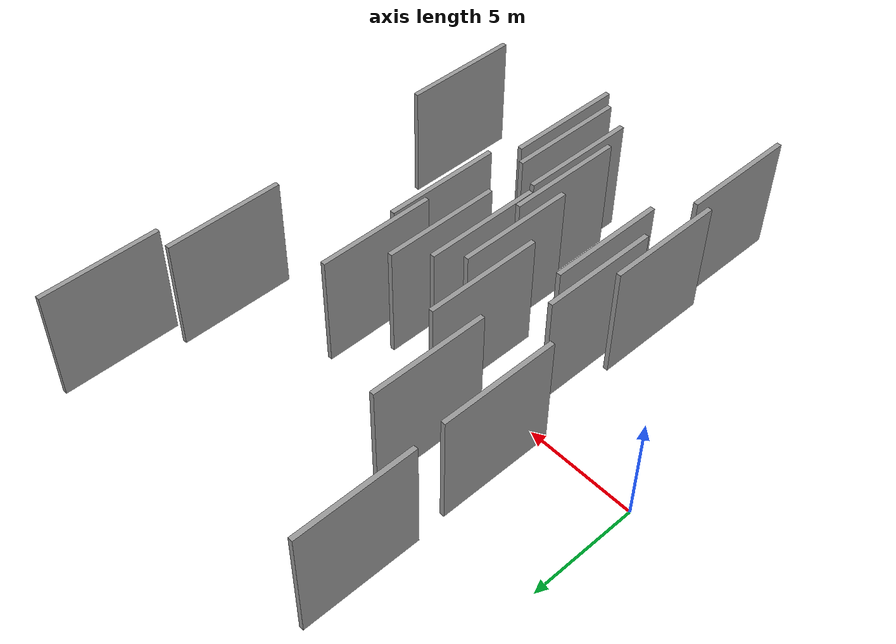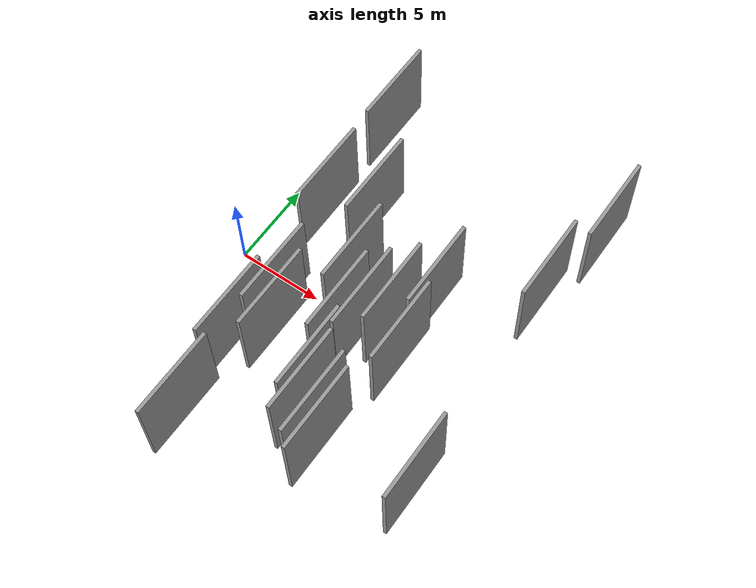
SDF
<sdf version="1.6">
 <world name="default">
  <scene>
   <sky><clouds><speed>12</speed></clouds></sky>
   <ambient>0.4 0.4 0.4 1</ambient>
   <background>0.7 0.7 0.7 1</background>
   <shadows>1</shadows>
  </scene>
  <gravity>0 0 -9.8066</gravity>
  <magnetic_field>6e-06 2.3e-05 -4.2e-05</magnetic_field>
  <physics default="0" name="default_physics" type="ode">
   <ode>
    <solver>
     <type>quick</type>
     <iters>10</iters>
     <sor>1.0</sor>
     <use_dynamic_moi_rescaling>0</use_dynamic_moi_rescaling>
    </solver>
    <constraints>
     <cfm>0</cfm>
     <erp>0.2</erp>
     <contact_max_correcting_vel>100</contact_max_correcting_vel>
     <contact_surface_layer>0.001</contact_surface_layer>
    </constraints>
   </ode>
   <max_step_size>0.004</max_step_size>
   <real_time_factor>1</real_time_factor>
   <real_time_update_rate>250</real_time_update_rate>
  </physics>
  <light name="sun" type="directional">
   <pose>0 0 10 0 0 0</pose>
   <diffuse>0.8 0.8 0.8 1</diffuse>
   <specular>0.2 0.2 0.2 1</specular>
   <attenuation>
    <range>1000</range>
    <constant>0.9</constant>
    <linear>0.01</linear>
    <quadratic>0.001</quadratic>
   </attenuation>
   <direction>-0.5 0.1 -0.9</direction>
  </light>
  <model name="grey_wall_1">
   <static>1</static>
   <pose>10.4375 -6.9571 2.5 0.000000 0.000000 1.570796</pose>
   <link name="link">
    <pose>0 0 2.50 0 0 0</pose>
    <collision name="collision"><geometry><box><size>5.00 0.2 5.00</size></box></geometry></collision>
    <visual name="visual">
     <cast_shadows>0</cast_shadows>
     <geometry><box><size>5.00 0.2 5.00</size></box></geometry>
     <material>
      <script>
       <uri>model://grey_wall/materials/scripts</uri>
       <uri>model://grey_wall/materials/textures</uri>
       <name>vrc/grey_wall</name>
      </script>
     </material>
    </visual>
   </link>
  </model>
  <model name="grey_wall_2">
   <static>1</static>
   <pose>7.1329 0.7677 2.5 0.000000 0.000000 1.570796</pose>
   <link name="link">
    <pose>0 0 2.50 0 0 0</pose>
    <collision name="collision"><geometry><box><size>5.00 0.2 5.00</size></box></geometry></collision>
    <visual name="visual">
     <cast_shadows>0</cast_shadows>
     <geometry><box><size>5.00 0.2 5.00</size></box></geometry>
     <material>
      <script>
       <uri>model://grey_wall/materials/scripts</uri>
       <uri>model://grey_wall/materials/textures</uri>
       <name>vrc/grey_wall</name>
      </script>
     </material>
    </visual>
   </link>
  </model>
  <model name="grey_wall_3">
   <static>1</static>
   <pose>10.1062 -0.0211 2.5 0.000000 0.000000 1.570796</pose>
   <link name="link">
    <pose>0 0 2.50 0 0 0</pose>
    <collision name="collision"><geometry><box><size>5.00 0.2 5.00</size></box></geometry></collision>
    <visual name="visual">
     <cast_shadows>0</cast_shadows>
     <geometry><box><size>5.00 0.2 5.00</size></box></geometry>
     <material>
      <script>
       <uri>model://grey_wall/materials/scripts</uri>
       <uri>model://grey_wall/materials/textures</uri>
       <name>vrc/grey_wall</name>
      </script>
     </material>
    </visual>
   </link>
  </model>
  <model name="grey_wall_4">
   <static>1</static>
   <pose>15.7610 5.5282 2.5 0.000000 0.000000 1.570796</pose>
   <link name="link">
    <pose>0 0 2.50 0 0 0</pose>
    <collision name="collision"><geometry><box><size>5.00 0.2 5.00</size></box></geometry></collision>
    <visual name="visual">
     <cast_shadows>0</cast_shadows>
     <geometry><box><size>5.00 0.2 5.00</size></box></geometry>
     <material>
      <script>
       <uri>model://grey_wall/materials/scripts</uri>
       <uri>model://grey_wall/materials/textures</uri>
       <name>vrc/grey_wall</name>
      </script>
     </material>
    </visual>
   </link>
  </model>
  <model name="grey_wall_5">
   <static>1</static>
   <pose>9.2711 -6.3599 2.5 0.000000 0.000000 1.570796</pose>
   <link name="link">
    <pose>0 0 2.50 0 0 0</pose>
    <collision name="collision"><geometry><box><size>5.00 0.2 5.00</size></box></geometry></collision>
    <visual name="visual">
     <cast_shadows>0</cast_shadows>
     <geometry><box><size>5.00 0.2 5.00</size></box></geometry>
     <material>
      <script>
       <uri>model://grey_wall/materials/scripts</uri>
       <uri>model://grey_wall/materials/textures</uri>
       <name>vrc/grey_wall</name>
      </script>
     </material>
    </visual>
   </link>
  </model>
  <model name="grey_wall_6">
   <static>1</static>
   <pose>3.9397 -5.1792 2.5 0.000000 0.000000 1.570796</pose>
   <link name="link">
    <pose>0 0 2.50 0 0 0</pose>
    <collision name="collision"><geometry><box><size>5.00 0.2 5.00</size></box></geometry></collision>
    <visual name="visual">
     <cast_shadows>0</cast_shadows>
     <geometry><box><size>5.00 0.2 5.00</size></box></geometry>
     <material>
      <script>
       <uri>model://grey_wall/materials/scripts</uri>
       <uri>model://grey_wall/materials/textures</uri>
       <name>vrc/grey_wall</name>
      </script>
     </material>
    </visual>
   </link>
  </model>
  <model name="grey_wall_7">
   <static>1</static>
   <pose>9.0443 -1.0770 2.5 0.000000 0.000000 1.570796</pose>
   <link name="link">
    <pose>0 0 2.50 0 0 0</pose>
    <collision name="collision"><geometry><box><size>5.00 0.2 5.00</size></box></geometry></collision>
    <visual name="visual">
     <cast_shadows>0</cast_shadows>
     <geometry><box><size>5.00 0.2 5.00</size></box></geometry>
     <material>
      <script>
       <uri>model://grey_wall/materials/scripts</uri>
       <uri>model://grey_wall/materials/textures</uri>
       <name>vrc/grey_wall</name>
      </script>
     </material>
    </visual>
   </link>
  </model>
  <model name="grey_wall_8">
   <static>1</static>
   <pose>16.7109 10.2457 2.5 0.000000 0.000000 1.570796</pose>
   <link name="link">
    <pose>0 0 2.50 0 0 0</pose>
    <collision name="collision"><geometry><box><size>5.00 0.2 5.00</size></box></geometry></collision>
    <visual name="visual">
     <cast_shadows>0</cast_shadows>
     <geometry><box><size>5.00 0.2 5.00</size></box></geometry>
     <material>
      <script>
       <uri>model://grey_wall/materials/scripts</uri>
       <uri>model://grey_wall/materials/textures</uri>
       <name>vrc/grey_wall</name>
      </script>
     </material>
    </visual>
   </link>
  </model>
  <model name="grey_wall_9">
   <static>1</static>
   <pose>11.3660 2.0083 2.5 0.000000 0.000000 1.570796</pose>
   <link name="link">
    <pose>0 0 2.50 0 0 0</pose>
    <collision name="collision"><geometry><box><size>5.00 0.2 5.00</size></box></geometry></collision>
    <visual name="visual">
     <cast_shadows>0</cast_shadows>
     <geometry><box><size>5.00 0.2 5.00</size></box></geometry>
     <material>
      <script>
       <uri>model://grey_wall/materials/scripts</uri>
       <uri>model://grey_wall/materials/textures</uri>
       <name>vrc/grey_wall</name>
      </script>
     </material>
    </visual>
   </link>
  </model>
  <model name="grey_wall_10">
   <static>1</static>
   <pose>4.5830 -2.4192 2.5 0.000000 0.000000 1.570796</pose>
   <link name="link">
    <pose>0 0 2.50 0 0 0</pose>
    <collision name="collision"><geometry><box><size>5.00 0.2 5.00</size></box></geometry></collision>
    <visual name="visual">
     <cast_shadows>0</cast_shadows>
     <geometry><box><size>5.00 0.2 5.00</size></box></geometry>
     <material>
      <script>
       <uri>model://grey_wall/materials/scripts</uri>
       <uri>model://grey_wall/materials/textures</uri>
       <name>vrc/grey_wall</name>
      </script>
     </material>
    </visual>
   </link>
  </model>
  <model name="grey_wall_11">
   <static>1</static>
   <pose>16.2003 -6.8562 2.5 0.000000 0.000000 1.570796</pose>
   <link name="link">
    <pose>0 0 2.50 0 0 0</pose>
    <collision name="collision"><geometry><box><size>5.00 0.2 5.00</size></box></geometry></collision>
    <visual name="visual">
     <cast_shadows>0</cast_shadows>
     <geometry><box><size>5.00 0.2 5.00</size></box></geometry>
     <material>
      <script>
       <uri>model://grey_wall/materials/scripts</uri>
       <uri>model://grey_wall/materials/textures</uri>
       <name>vrc/grey_wall</name>
      </script>
     </material>
    </visual>
   </link>
  </model>
  <model name="grey_wall_12">
   <static>1</static>
   <pose>5.3863 -3.6748 2.5 0.000000 0.000000 1.570796</pose>
   <link name="link">
    <pose>0 0 2.50 0 0 0</pose>
    <collision name="collision"><geometry><box><size>5.00 0.2 5.00</size></box></geometry></collision>
    <visual name="visual">
     <cast_shadows>0</cast_shadows>
     <geometry><box><size>5.00 0.2 5.00</size></box></geometry>
     <material>
      <script>
       <uri>model://grey_wall/materials/scripts</uri>
       <uri>model://grey_wall/materials/textures</uri>
       <name>vrc/grey_wall</name>
      </script>
     </material>
    </visual>
   </link>
  </model>
  <model name="grey_wall_13">
   <static>1</static>
   <pose>11.6826 -1.5424 2.5 0.000000 0.000000 1.570796</pose>
   <link name="link">
    <pose>0 0 2.50 0 0 0</pose>
    <collision name="collision"><geometry><box><size>5.00 0.2 5.00</size></box></geometry></collision>
    <visual name="visual">
     <cast_shadows>0</cast_shadows>
     <geometry><box><size>5.00 0.2 5.00</size></box></geometry>
     <material>
      <script>
       <uri>model://grey_wall/materials/scripts</uri>
       <uri>model://grey_wall/materials/textures</uri>
       <name>vrc/grey_wall</name>
      </script>
     </material>
    </visual>
   </link>
  </model>
  <model name="grey_wall_14">
   <static>1</static>
   <pose>8.8216 -5.1553 2.5 0.000000 0.000000 1.570796</pose>
   <link name="link">
    <pose>0 0 2.50 0 0 0</pose>
    <collision name="collision"><geometry><box><size>5.00 0.2 5.00</size></box></geometry></collision>
    <visual name="visual">
     <cast_shadows>0</cast_shadows>
     <geometry><box><size>5.00 0.2 5.00</size></box></geometry>
     <material>
      <script>
       <uri>model://grey_wall/materials/scripts</uri>
       <uri>model://grey_wall/materials/textures</uri>
       <name>vrc/grey_wall</name>
      </script>
     </material>
    </visual>
   </link>
  </model>
  <model name="grey_wall_15">
   <static>1</static>
   <pose>4.4597 -9.9965 2.5 0.000000 0.000000 1.570796</pose>
   <link name="link">
    <pose>0 0 2.50 0 0 0</pose>
    <collision name="collision"><geometry><box><size>5.00 0.2 5.00</size></box></geometry></collision>
    <visual name="visual">
     <cast_shadows>0</cast_shadows>
     <geometry><box><size>5.00 0.2 5.00</size></box></geometry>
     <material>
      <script>
       <uri>model://grey_wall/materials/scripts</uri>
       <uri>model://grey_wall/materials/textures</uri>
       <name>vrc/grey_wall</name>
      </script>
     </material>
    </visual>
   </link>
  </model>
  <model name="grey_wall_16">
   <static>1</static>
   <pose>3.1875 10.0503 2.5 0.000000 0.000000 1.570796</pose>
   <link name="link">
    <pose>0 0 2.50 0 0 0</pose>
    <collision name="collision"><geometry><box><size>5.00 0.2 5.00</size></box></geometry></collision>
    <visual name="visual">
     <cast_shadows>0</cast_shadows>
     <geometry><box><size>5.00 0.2 5.00</size></box></geometry>
     <material>
      <script>
       <uri>model://grey_wall/materials/scripts</uri>
       <uri>model://grey_wall/materials/textures</uri>
       <name>vrc/grey_wall</name>
      </script>
     </material>
    </visual>
   </link>
  </model>
  <model name="grey_wall_17">
   <static>1</static>
   <pose>8.1460 -1.8714 2.5 0.000000 0.000000 1.570796</pose>
   <link name="link">
    <pose>0 0 2.50 0 0 0</pose>
    <collision name="collision"><geometry><box><size>5.00 0.2 5.00</size></box></geometry></collision>
    <visual name="visual">
     <cast_shadows>0</cast_shadows>
     <geometry><box><size>5.00 0.2 5.00</size></box></geometry>
     <material>
      <script>
       <uri>model://grey_wall/materials/scripts</uri>
       <uri>model://grey_wall/materials/textures</uri>
       <name>vrc/grey_wall</name>
      </script>
     </material>
    </visual>
   </link>
  </model>
  <model name="grey_wall_18">
   <static>1</static>
   <pose>11.0599 -7.5354 2.5 0.000000 0.000000 1.570796</pose>
   <link name="link">
    <pose>0 0 2.50 0 0 0</pose>
    <collision name="collision"><geometry><box><size>5.00 0.2 5.00</size></box></geometry></collision>
    <visual name="visual">
     <cast_shadows>0</cast_shadows>
     <geometry><box><size>5.00 0.2 5.00</size></box></geometry>
     <material>
      <script>
       <uri>model://grey_wall/materials/scripts</uri>
       <uri>model://grey_wall/materials/textures</uri>
       <name>vrc/grey_wall</name>
      </script>
     </material>
    </visual>
   </link>
  </model>
  <model name="grey_wall_19">
   <static>1</static>
   <pose>3.3112 3.7920 2.5 0.000000 0.000000 1.570796</pose>
   <link name="link">
    <pose>0 0 2.50 0 0 0</pose>
    <collision name="collision"><geometry><box><size>5.00 0.2 5.00</size></box></geometry></collision>
    <visual name="visual">
     <cast_shadows>0</cast_shadows>
     <geometry><box><size>5.00 0.2 5.00</size></box></geometry>
     <material>
      <script>
       <uri>model://grey_wall/materials/scripts</uri>
       <uri>model://grey_wall/materials/textures</uri>
       <name>vrc/grey_wall</name>
      </script>
     </material>
    </visual>
   </link>
  </model>
  <model name="grey_wall_20">
   <static>1</static>
   <pose>5.7513 4.6458 2.5 0.000000 0.000000 1.570796</pose>
   <link name="link">
    <pose>0 0 2.50 0 0 0</pose>
    <collision name="collision"><geometry><box><size>5.00 0.2 5.00</size></box></geometry></collision>
    <visual name="visual">
     <cast_shadows>0</cast_shadows>
     <geometry><box><size>5.00 0.2 5.00</size></box></geometry>
     <material>
      <script>
       <uri>model://grey_wall/materials/scripts</uri>
       <uri>model://grey_wall/materials/textures</uri>
       <name>vrc/grey_wall</name>
      </script>
     </material>
    </visual>
   </link>
  </model>
 </world>
</sdf>
